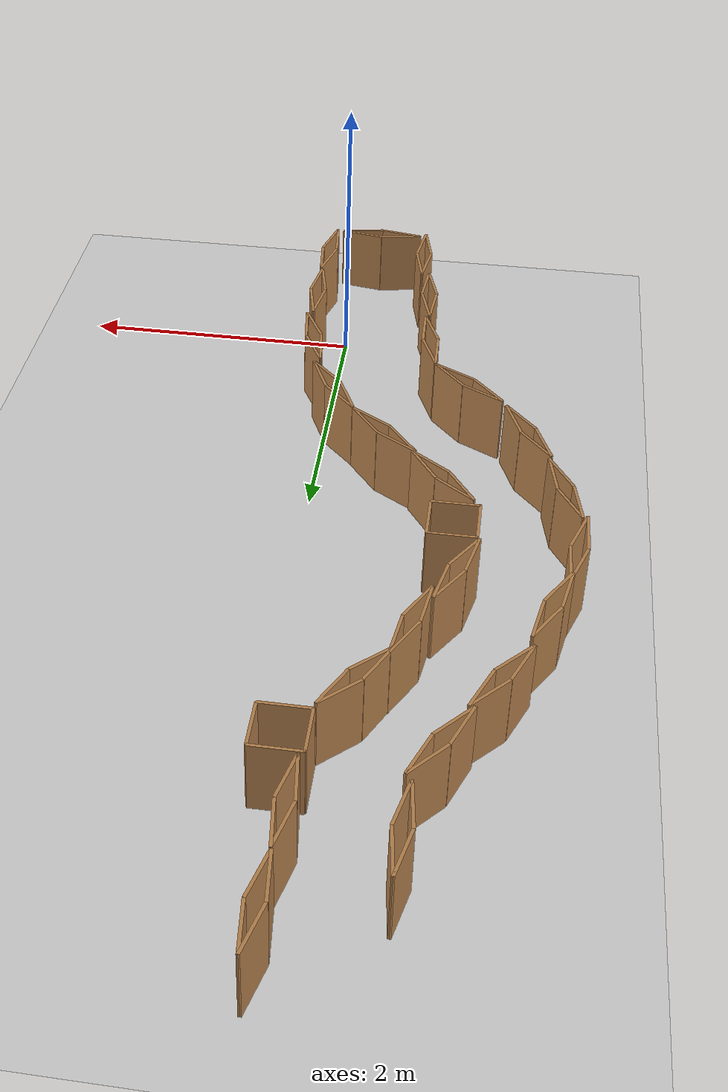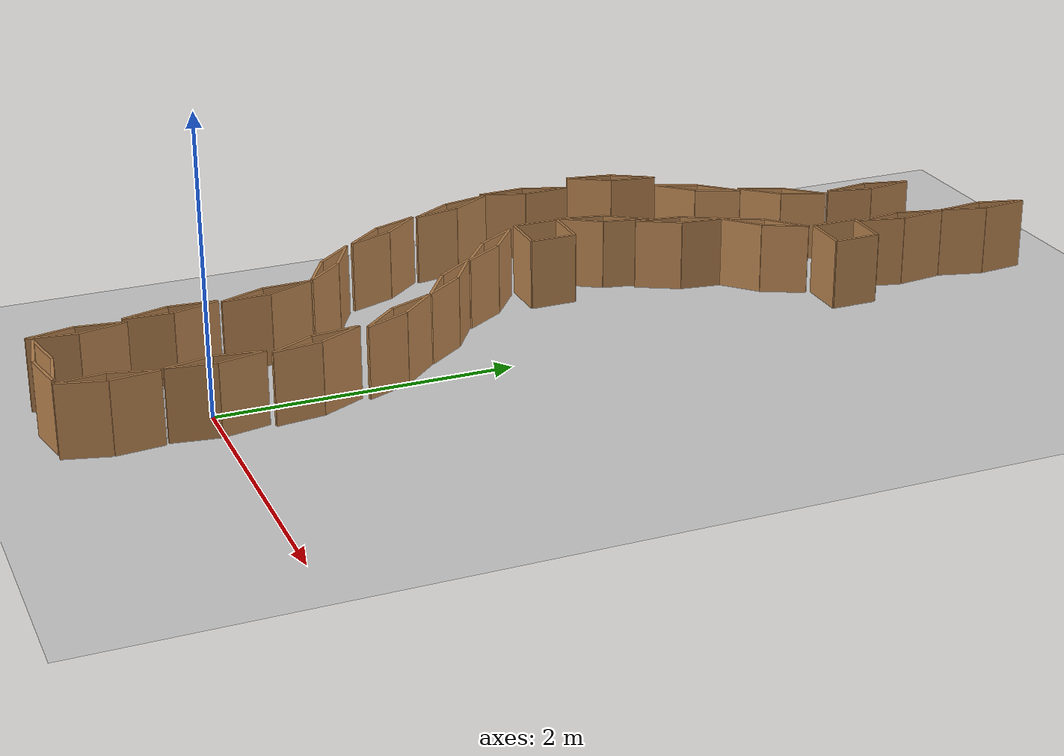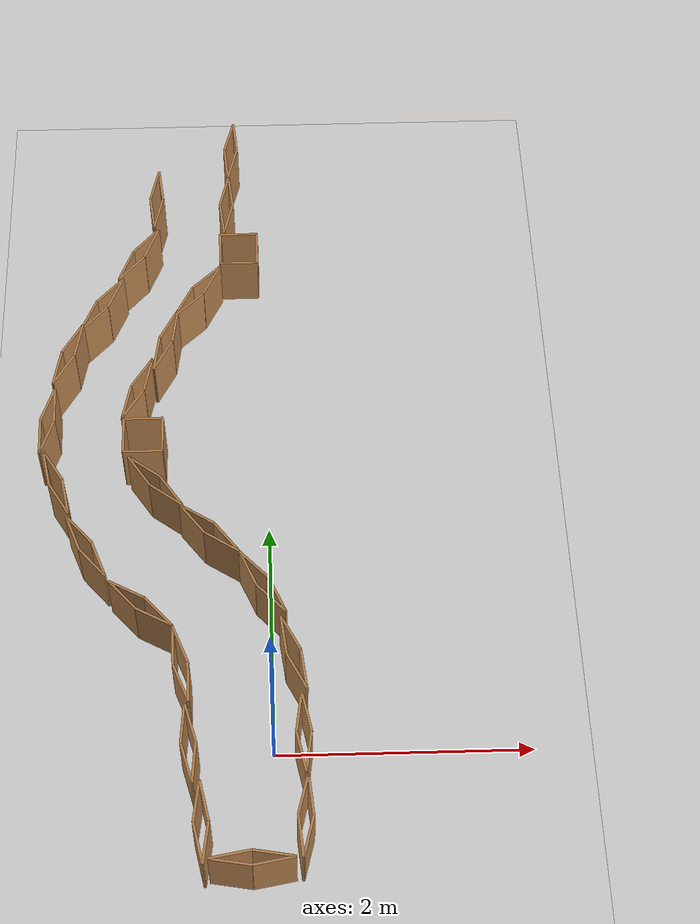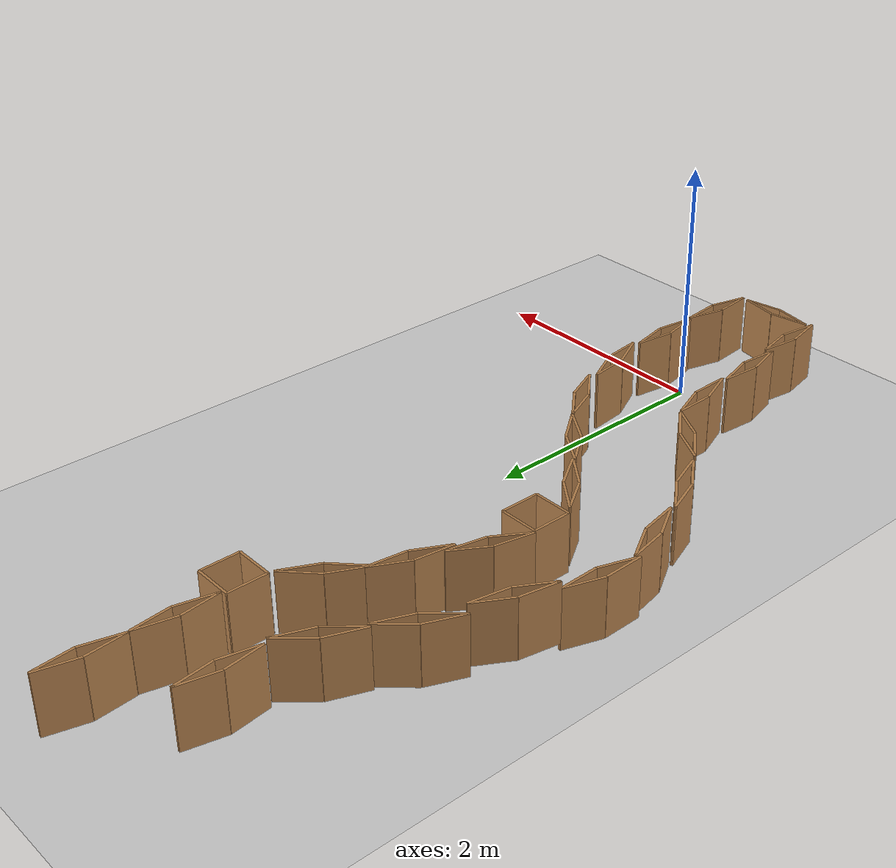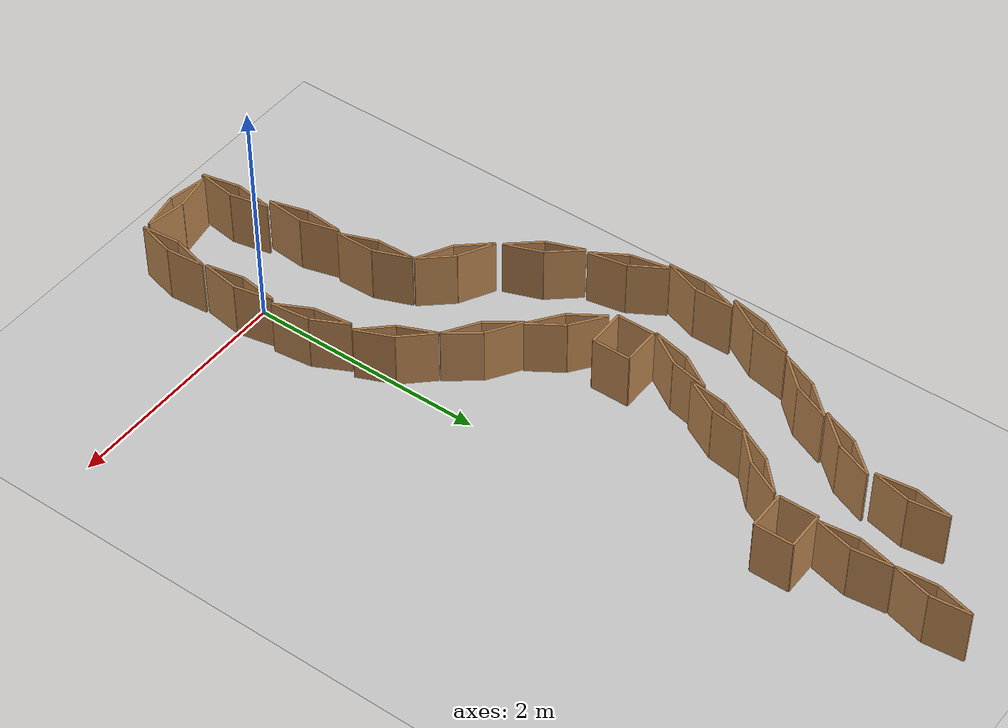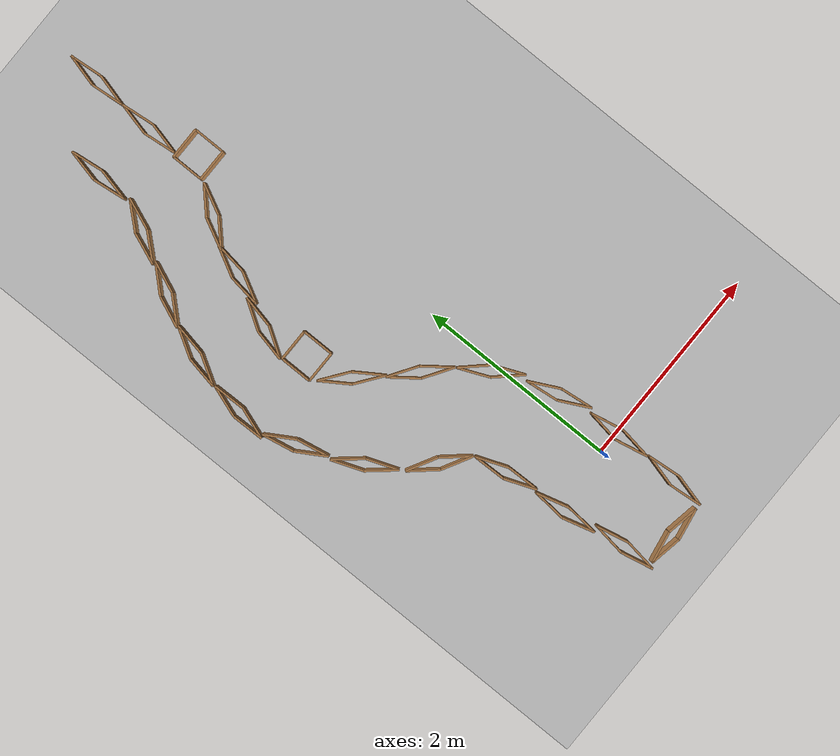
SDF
<sdf version="1.7">
 <world name="default">
  <model name="ground_plane">
   <static>1</static>
   <link name="link">
    <collision name="collision">
     <geometry><plane><normal>0 0 1</normal><size>100 100</size></plane></geometry>
     <surface>
      <contact><collide_bitmask>65535</collide_bitmask></contact>
      <friction><ode><mu>100</mu><mu2>50</mu2></ode></friction>
     </surface>
    </collision>
    <visual name="visual">
     <cast_shadows>0</cast_shadows>
     <geometry><plane><normal>0 0 1</normal><size>100 100</size></plane></geometry>
     <material>
      <script><uri>file://media/materials/scripts/gazebo.material</uri><name>Gazebo/Grey</name></script>
     </material>
    </visual>
   </link>
  </model>
  <light name="sun" type="directional">
   <pose>0 0 10 0 -0 0</pose>
   <diffuse>0.8 0.8 0.8 1</diffuse>
   <specular>0.2 0.2 0.2 1</specular>
   <attenuation>
    <range>1000</range>
    <constant>0.9</constant>
    <linear>0.01</linear>
    <quadratic>0.001</quadratic>
   </attenuation>
   <direction>-0.5 0.1 -0.9</direction>
   <spot><inner_angle>0</inner_angle><outer_angle>0</outer_angle><falloff>0</falloff></spot>
  </light>
  <model name="folded_box">
   <pose>0.227222 -0.01656 0 0 0 -1.5444</pose>
   <static>1</static>
   <link name="box1">
    <pose>0.16 -0.028218 0.25 0 -0 0.174533</pose>
    <collision name="collision"><geometry><box><size>0.325 0.05 0.5</size></box></geometry></collision>
    <visual name="visual">
     <geometry><box><size>0.325 0.02 0.5</size></box></geometry>
     <material>
      <script><uri>file://media/materials/scripts/gazebo.material</uri><name>Gazebo/WoodPallet</name></script>
     </material>
    </visual>
   </link>
   <link name="box2">
    <pose>0.16 0.028218 0.25 0 0 -0.174533</pose>
    <collision name="collision"><geometry><box><size>0.325 0.05 0.5</size></box></geometry></collision>
    <visual name="visual">
     <geometry><box><size>0.325 0.02 0.5</size></box></geometry>
     <material>
      <script><uri>file://media/materials/scripts/gazebo.material</uri><name>Gazebo/WoodPallet</name></script>
     </material>
    </visual>
   </link>
   <link name="box3">
    <pose>-0.16 0.028218 0.25 0 -0 0.174533</pose>
    <collision name="collision"><geometry><box><size>0.325 0.05 0.5</size></box></geometry></collision>
    <visual name="visual">
     <geometry><box><size>0.325 0.02 0.5</size></box></geometry>
     <material>
      <script><uri>file://media/materials/scripts/gazebo.material</uri><name>Gazebo/WoodPallet</name></script>
     </material>
    </visual>
   </link>
   <link name="box4">
    <pose>-0.16 -0.028218 0.25 0 0 -0.174533</pose>
    <collision name="collision"><geometry><box><size>0.325 0.05 0.5</size></box></geometry></collision>
    <visual name="visual">
     <geometry><box><size>0.325 0.02 0.5</size></box></geometry>
     <material>
      <script><uri>file://media/materials/scripts/gazebo.material</uri><name>Gazebo/WoodPallet</name></script>
     </material>
    </visual>
   </link>
  </model>
  <gravity>0 0 -9.8</gravity>
  <magnetic_field>6e-06 2.3e-05 -4.2e-05</magnetic_field>
  <atmosphere type="adiabatic"/>
  <physics name="default_physics" default="0" type="ode">
   <max_step_size>0.001</max_step_size>
   <real_time_factor>1</real_time_factor>
   <real_time_update_rate>1000</real_time_update_rate>
  </physics>
  <scene><ambient>0.4 0.4 0.4 1</ambient><background>0.7 0.7 0.7 1</background><shadows>1</shadows></scene>
  <audio><device>default</device></audio>
  <spherical_coordinates>
   <surface_model>EARTH_WGS84</surface_model>
   <latitude_deg>0</latitude_deg>
   <longitude_deg>0</longitude_deg>
   <elevation>0</elevation>
   <heading_deg>0</heading_deg>
  </spherical_coordinates>
  <model name="folded_box_clone">
   <static>1</static>
   <link name="box1">
    <pose>0.16 -0.028218 0.25 0 -0 0.174533</pose>
    <collision name="collision"><geometry><box><size>0.325 0.05 0.5</size></box></geometry></collision>
    <visual name="visual">
     <geometry><box><size>0.325 0.02 0.5</size></box></geometry>
     <material>
      <script><uri>file://media/materials/scripts/gazebo.material</uri><name>Gazebo/WoodPallet</name></script>
     </material>
    </visual>
   </link>
   <link name="box2">
    <pose>0.16 0.028218 0.25 0 0 -0.174533</pose>
    <collision name="collision"><geometry><box><size>0.325 0.05 0.5</size></box></geometry></collision>
    <visual name="visual">
     <geometry><box><size>0.325 0.02 0.5</size></box></geometry>
     <material>
      <script><uri>file://media/materials/scripts/gazebo.material</uri><name>Gazebo/WoodPallet</name></script>
     </material>
    </visual>
   </link>
   <link name="box3">
    <pose>-0.16 0.028218 0.25 0 -0 0.174533</pose>
    <collision name="collision"><geometry><box><size>0.325 0.05 0.5</size></box></geometry></collision>
    <visual name="visual">
     <geometry><box><size>0.325 0.02 0.5</size></box></geometry>
     <material>
      <script><uri>file://media/materials/scripts/gazebo.material</uri><name>Gazebo/WoodPallet</name></script>
     </material>
    </visual>
   </link>
   <link name="box4">
    <pose>-0.16 -0.028218 0.25 0 0 -0.174533</pose>
    <collision name="collision"><geometry><box><size>0.325 0.05 0.5</size></box></geometry></collision>
    <visual name="visual">
     <geometry><box><size>0.325 0.02 0.5</size></box></geometry>
     <material>
      <script><uri>file://media/materials/scripts/gazebo.material</uri><name>Gazebo/WoodPallet</name></script>
     </material>
    </visual>
   </link>
   <pose>-0.170439 -0.983466 0 0 -0 0</pose>
  </model>
  <model name="folded_box_clone_clone">
   <static>1</static>
   <link name="box1">
    <pose>0.16 -0.028218 0.25 0 -0 0.174533</pose>
    <collision name="collision"><geometry><box><size>0.325 0.05 0.5</size></box></geometry></collision>
    <visual name="visual">
     <geometry><box><size>0.325 0.02 0.5</size></box></geometry>
     <material>
      <script><uri>file://media/materials/scripts/gazebo.material</uri><name>Gazebo/WoodPallet</name></script>
     </material>
    </visual>
   </link>
   <link name="box2">
    <pose>0.16 0.028218 0.25 0 0 -0.174533</pose>
    <collision name="collision"><geometry><box><size>0.325 0.05 0.5</size></box></geometry></collision>
    <visual name="visual">
     <geometry><box><size>0.325 0.02 0.5</size></box></geometry>
     <material>
      <script><uri>file://media/materials/scripts/gazebo.material</uri><name>Gazebo/WoodPallet</name></script>
     </material>
    </visual>
   </link>
   <link name="box3">
    <pose>-0.16 0.028218 0.25 0 -0 0.174533</pose>
    <collision name="collision"><geometry><box><size>0.325 0.05 0.5</size></box></geometry></collision>
    <visual name="visual">
     <geometry><box><size>0.325 0.02 0.5</size></box></geometry>
     <material>
      <script><uri>file://media/materials/scripts/gazebo.material</uri><name>Gazebo/WoodPallet</name></script>
     </material>
    </visual>
   </link>
   <link name="box4">
    <pose>-0.16 -0.028218 0.25 0 0 -0.174533</pose>
    <collision name="collision"><geometry><box><size>0.325 0.05 0.5</size></box></geometry></collision>
    <visual name="visual">
     <geometry><box><size>0.325 0.02 0.5</size></box></geometry>
     <material>
      <script><uri>file://media/materials/scripts/gazebo.material</uri><name>Gazebo/WoodPallet</name></script>
     </material>
    </visual>
   </link>
   <pose>-0.538607 -0.702804 0 0 0 -1.53783</pose>
  </model>
  <model name="folded_box_clone_clone_clone">
   <static>1</static>
   <link name="box1">
    <pose>0.16 -0.028218 0.25 0 -0 0.174533</pose>
    <collision name="collision"><geometry><box><size>0.325 0.05 0.5</size></box></geometry></collision>
    <visual name="visual">
     <geometry><box><size>0.325 0.02 0.5</size></box></geometry>
     <material>
      <script><uri>file://media/materials/scripts/gazebo.material</uri><name>Gazebo/WoodPallet</name></script>
     </material>
    </visual>
   </link>
   <link name="box2">
    <pose>0.16 0.028218 0.25 0 0 -0.174533</pose>
    <collision name="collision"><geometry><box><size>0.325 0.05 0.5</size></box></geometry></collision>
    <visual name="visual">
     <geometry><box><size>0.325 0.02 0.5</size></box></geometry>
     <material>
      <script><uri>file://media/materials/scripts/gazebo.material</uri><name>Gazebo/WoodPallet</name></script>
     </material>
    </visual>
   </link>
   <link name="box3">
    <pose>-0.16 0.028218 0.25 0 -0 0.174533</pose>
    <collision name="collision"><geometry><box><size>0.325 0.05 0.5</size></box></geometry></collision>
    <visual name="visual">
     <geometry><box><size>0.325 0.02 0.5</size></box></geometry>
     <material>
      <script><uri>file://media/materials/scripts/gazebo.material</uri><name>Gazebo/WoodPallet</name></script>
     </material>
    </visual>
   </link>
   <link name="box4">
    <pose>-0.16 -0.028218 0.25 0 0 -0.174533</pose>
    <collision name="collision"><geometry><box><size>0.325 0.05 0.5</size></box></geometry></collision>
    <visual name="visual">
     <geometry><box><size>0.325 0.02 0.5</size></box></geometry>
     <material>
      <script><uri>file://media/materials/scripts/gazebo.material</uri><name>Gazebo/WoodPallet</name></script>
     </material>
    </visual>
   </link>
   <pose>0.16718 0.639805 0 0 0 -1.27848</pose>
  </model>
  <model name="folded_box_clone_clone_clone_0">
   <static>1</static>
   <link name="box1">
    <pose>0.16 -0.028218 0.25 0 -0 0.174533</pose>
    <collision name="collision"><geometry><box><size>0.325 0.05 0.5</size></box></geometry></collision>
    <visual name="visual">
     <geometry><box><size>0.325 0.02 0.5</size></box></geometry>
     <material>
      <script><uri>file://media/materials/scripts/gazebo.material</uri><name>Gazebo/WoodPallet</name></script>
     </material>
    </visual>
   </link>
   <link name="box2">
    <pose>0.16 0.028218 0.25 0 0 -0.174533</pose>
    <collision name="collision"><geometry><box><size>0.325 0.05 0.5</size></box></geometry></collision>
    <visual name="visual">
     <geometry><box><size>0.325 0.02 0.5</size></box></geometry>
     <material>
      <script><uri>file://media/materials/scripts/gazebo.material</uri><name>Gazebo/WoodPallet</name></script>
     </material>
    </visual>
   </link>
   <link name="box3">
    <pose>-0.16 0.028218 0.25 0 -0 0.174533</pose>
    <collision name="collision"><geometry><box><size>0.325 0.05 0.5</size></box></geometry></collision>
    <visual name="visual">
     <geometry><box><size>0.325 0.02 0.5</size></box></geometry>
     <material>
      <script><uri>file://media/materials/scripts/gazebo.material</uri><name>Gazebo/WoodPallet</name></script>
     </material>
    </visual>
   </link>
   <link name="box4">
    <pose>-0.16 -0.028218 0.25 0 0 -0.174533</pose>
    <collision name="collision"><geometry><box><size>0.325 0.05 0.5</size></box></geometry></collision>
    <visual name="visual">
     <geometry><box><size>0.325 0.02 0.5</size></box></geometry>
     <material>
      <script><uri>file://media/materials/scripts/gazebo.material</uri><name>Gazebo/WoodPallet</name></script>
     </material>
    </visual>
   </link>
   <pose>-0.633637 -0.083151 0 0 0 -1.47963</pose>
  </model>
  <model name="folded_box_clone_clone_clone_0_clone">
   <static>1</static>
   <link name="box1">
    <pose>0.16 -0.028218 0.25 0 -0 0.174533</pose>
    <collision name="collision"><geometry><box><size>0.325 0.05 0.5</size></box></geometry></collision>
    <visual name="visual">
     <geometry><box><size>0.325 0.02 0.5</size></box></geometry>
     <material>
      <script><uri>file://media/materials/scripts/gazebo.material</uri><name>Gazebo/WoodPallet</name></script>
     </material>
    </visual>
   </link>
   <link name="box2">
    <pose>0.16 0.028218 0.25 0 0 -0.174533</pose>
    <collision name="collision"><geometry><box><size>0.325 0.05 0.5</size></box></geometry></collision>
    <visual name="visual">
     <geometry><box><size>0.325 0.02 0.5</size></box></geometry>
     <material>
      <script><uri>file://media/materials/scripts/gazebo.material</uri><name>Gazebo/WoodPallet</name></script>
     </material>
    </visual>
   </link>
   <link name="box3">
    <pose>-0.16 0.028218 0.25 0 -0 0.174533</pose>
    <collision name="collision"><geometry><box><size>0.325 0.05 0.5</size></box></geometry></collision>
    <visual name="visual">
     <geometry><box><size>0.325 0.02 0.5</size></box></geometry>
     <material>
      <script><uri>file://media/materials/scripts/gazebo.material</uri><name>Gazebo/WoodPallet</name></script>
     </material>
    </visual>
   </link>
   <link name="box4">
    <pose>-0.16 -0.028218 0.25 0 0 -0.174533</pose>
    <collision name="collision"><geometry><box><size>0.325 0.05 0.5</size></box></geometry></collision>
    <visual name="visual">
     <geometry><box><size>0.325 0.02 0.5</size></box></geometry>
     <material>
      <script><uri>file://media/materials/scripts/gazebo.material</uri><name>Gazebo/WoodPallet</name></script>
     </material>
    </visual>
   </link>
   <pose>-0.696324 0.564663 0 0 0 -1.37448</pose>
  </model>
  <model name="folded_box_clone_clone_clone_0_clone_clone">
   <static>1</static>
   <link name="box1">
    <pose>0.16 -0.028218 0.25 0 -0 0.174533</pose>
    <collision name="collision"><geometry><box><size>0.325 0.05 0.5</size></box></geometry></collision>
    <visual name="visual">
     <geometry><box><size>0.325 0.02 0.5</size></box></geometry>
     <material>
      <script><uri>file://media/materials/scripts/gazebo.material</uri><name>Gazebo/WoodPallet</name></script>
     </material>
    </visual>
   </link>
   <link name="box2">
    <pose>0.16 0.028218 0.25 0 0 -0.174533</pose>
    <collision name="collision"><geometry><box><size>0.325 0.05 0.5</size></box></geometry></collision>
    <visual name="visual">
     <geometry><box><size>0.325 0.02 0.5</size></box></geometry>
     <material>
      <script><uri>file://media/materials/scripts/gazebo.material</uri><name>Gazebo/WoodPallet</name></script>
     </material>
    </visual>
   </link>
   <link name="box3">
    <pose>-0.16 0.028218 0.25 0 -0 0.174533</pose>
    <collision name="collision"><geometry><box><size>0.325 0.05 0.5</size></box></geometry></collision>
    <visual name="visual">
     <geometry><box><size>0.325 0.02 0.5</size></box></geometry>
     <material>
      <script><uri>file://media/materials/scripts/gazebo.material</uri><name>Gazebo/WoodPallet</name></script>
     </material>
    </visual>
   </link>
   <link name="box4">
    <pose>-0.16 -0.028218 0.25 0 0 -0.174533</pose>
    <collision name="collision"><geometry><box><size>0.325 0.05 0.5</size></box></geometry></collision>
    <visual name="visual">
     <geometry><box><size>0.325 0.02 0.5</size></box></geometry>
     <material>
      <script><uri>file://media/materials/scripts/gazebo.material</uri><name>Gazebo/WoodPallet</name></script>
     </material>
    </visual>
   </link>
   <pose>-1.01342 1.0919 0 0 0 -0.672295</pose>
  </model>
  <model name="folded_box_clone_clone_clone_clone">
   <static>1</static>
   <link name="box1">
    <pose>0.16 -0.028218 0.25 0 -0 0.174533</pose>
    <collision name="collision"><geometry><box><size>0.325 0.05 0.5</size></box></geometry></collision>
    <visual name="visual">
     <geometry><box><size>0.325 0.02 0.5</size></box></geometry>
     <material>
      <script><uri>file://media/materials/scripts/gazebo.material</uri><name>Gazebo/WoodPallet</name></script>
     </material>
    </visual>
   </link>
   <link name="box2">
    <pose>0.16 0.028218 0.25 0 0 -0.174533</pose>
    <collision name="collision"><geometry><box><size>0.325 0.05 0.5</size></box></geometry></collision>
    <visual name="visual">
     <geometry><box><size>0.325 0.02 0.5</size></box></geometry>
     <material>
      <script><uri>file://media/materials/scripts/gazebo.material</uri><name>Gazebo/WoodPallet</name></script>
     </material>
    </visual>
   </link>
   <link name="box3">
    <pose>-0.16 0.028218 0.25 0 -0 0.174533</pose>
    <collision name="collision"><geometry><box><size>0.325 0.05 0.5</size></box></geometry></collision>
    <visual name="visual">
     <geometry><box><size>0.325 0.02 0.5</size></box></geometry>
     <material>
      <script><uri>file://media/materials/scripts/gazebo.material</uri><name>Gazebo/WoodPallet</name></script>
     </material>
    </visual>
   </link>
   <link name="box4">
    <pose>-0.16 -0.028218 0.25 0 0 -0.174533</pose>
    <collision name="collision"><geometry><box><size>0.325 0.05 0.5</size></box></geometry></collision>
    <visual name="visual">
     <geometry><box><size>0.325 0.02 0.5</size></box></geometry>
     <material>
      <script><uri>file://media/materials/scripts/gazebo.material</uri><name>Gazebo/WoodPallet</name></script>
     </material>
    </visual>
   </link>
   <pose>-0.060691 1.25737 0 0 0 -0.989469</pose>
  </model>
  <model name="folded_box_clone_clone_clone_clone_clone">
   <static>1</static>
   <link name="box1">
    <pose>0.16 -0.028218 0.25 0 -0 0.174533</pose>
    <collision name="collision"><geometry><box><size>0.325 0.05 0.5</size></box></geometry></collision>
    <visual name="visual">
     <geometry><box><size>0.325 0.02 0.5</size></box></geometry>
     <material>
      <script><uri>file://media/materials/scripts/gazebo.material</uri><name>Gazebo/WoodPallet</name></script>
     </material>
    </visual>
   </link>
   <link name="box2">
    <pose>0.16 0.028218 0.25 0 0 -0.174533</pose>
    <collision name="collision"><geometry><box><size>0.325 0.05 0.5</size></box></geometry></collision>
    <visual name="visual">
     <geometry><box><size>0.325 0.02 0.5</size></box></geometry>
     <material>
      <script><uri>file://media/materials/scripts/gazebo.material</uri><name>Gazebo/WoodPallet</name></script>
     </material>
    </visual>
   </link>
   <link name="box3">
    <pose>-0.16 0.028218 0.25 0 -0 0.174533</pose>
    <collision name="collision"><geometry><box><size>0.325 0.05 0.5</size></box></geometry></collision>
    <visual name="visual">
     <geometry><box><size>0.325 0.02 0.5</size></box></geometry>
     <material>
      <script><uri>file://media/materials/scripts/gazebo.material</uri><name>Gazebo/WoodPallet</name></script>
     </material>
    </visual>
   </link>
   <link name="box4">
    <pose>-0.16 -0.028218 0.25 0 0 -0.174533</pose>
    <collision name="collision"><geometry><box><size>0.325 0.05 0.5</size></box></geometry></collision>
    <visual name="visual">
     <geometry><box><size>0.325 0.02 0.5</size></box></geometry>
     <material>
      <script><uri>file://media/materials/scripts/gazebo.material</uri><name>Gazebo/WoodPallet</name></script>
     </material>
    </visual>
   </link>
   <pose>-0.475657 1.75214 0 0 0 -0.747364</pose>
  </model>
  <model name="folded_box_clone_clone_clone_clone_clone_clone">
   <static>1</static>
   <link name="box1">
    <pose>0.16 -0.028218 0.25 0 -0 0.174533</pose>
    <collision name="collision"><geometry><box><size>0.325 0.05 0.5</size></box></geometry></collision>
    <visual name="visual">
     <geometry><box><size>0.325 0.02 0.5</size></box></geometry>
     <material>
      <script><uri>file://media/materials/scripts/gazebo.material</uri><name>Gazebo/WoodPallet</name></script>
     </material>
    </visual>
   </link>
   <link name="box2">
    <pose>0.16 0.028218 0.25 0 0 -0.174533</pose>
    <collision name="collision"><geometry><box><size>0.325 0.05 0.5</size></box></geometry></collision>
    <visual name="visual">
     <geometry><box><size>0.325 0.02 0.5</size></box></geometry>
     <material>
      <script><uri>file://media/materials/scripts/gazebo.material</uri><name>Gazebo/WoodPallet</name></script>
     </material>
    </visual>
   </link>
   <link name="box3">
    <pose>-0.16 0.028218 0.25 0 -0 0.174533</pose>
    <collision name="collision"><geometry><box><size>0.325 0.05 0.5</size></box></geometry></collision>
    <visual name="visual">
     <geometry><box><size>0.325 0.02 0.5</size></box></geometry>
     <material>
      <script><uri>file://media/materials/scripts/gazebo.material</uri><name>Gazebo/WoodPallet</name></script>
     </material>
    </visual>
   </link>
   <link name="box4">
    <pose>-0.16 -0.028218 0.25 0 0 -0.174533</pose>
    <collision name="collision"><geometry><box><size>0.325 0.05 0.5</size></box></geometry></collision>
    <visual name="visual">
     <geometry><box><size>0.325 0.02 0.5</size></box></geometry>
     <material>
      <script><uri>file://media/materials/scripts/gazebo.material</uri><name>Gazebo/WoodPallet</name></script>
     </material>
    </visual>
   </link>
   <pose>-0.913178 2.20492 0 0 0 -0.811482</pose>
  </model>
  <model name="folded_box_clone_clone_clone_clone_clone_clone_clone">
   <static>1</static>
   <link name="box1">
    <pose>0.16 -0.028218 0.25 0 -0 0.174533</pose>
    <collision name="collision"><geometry><box><size>0.325 0.05 0.5</size></box></geometry></collision>
    <visual name="visual">
     <geometry><box><size>0.325 0.02 0.5</size></box></geometry>
     <material>
      <script><uri>file://media/materials/scripts/gazebo.material</uri><name>Gazebo/WoodPallet</name></script>
     </material>
    </visual>
   </link>
   <link name="box2">
    <pose>0.16 0.028218 0.25 0 0 -0.174533</pose>
    <collision name="collision"><geometry><box><size>0.325 0.05 0.5</size></box></geometry></collision>
    <visual name="visual">
     <geometry><box><size>0.325 0.02 0.5</size></box></geometry>
     <material>
      <script><uri>file://media/materials/scripts/gazebo.material</uri><name>Gazebo/WoodPallet</name></script>
     </material>
    </visual>
   </link>
   <link name="box3">
    <pose>-0.16 0.028218 0.25 0 -0 0.174533</pose>
    <collision name="collision"><geometry><box><size>0.325 0.05 0.5</size></box></geometry></collision>
    <visual name="visual">
     <geometry><box><size>0.325 0.02 0.5</size></box></geometry>
     <material>
      <script><uri>file://media/materials/scripts/gazebo.material</uri><name>Gazebo/WoodPallet</name></script>
     </material>
    </visual>
   </link>
   <link name="box4">
    <pose>-0.16 -0.028218 0.25 0 0 -0.174533</pose>
    <collision name="collision"><geometry><box><size>0.325 0.05 0.5</size></box></geometry></collision>
    <visual name="visual">
     <geometry><box><size>0.325 0.02 0.5</size></box></geometry>
     <material>
      <script><uri>file://media/materials/scripts/gazebo.material</uri><name>Gazebo/WoodPallet</name></script>
     </material>
    </visual>
   </link>
   <pose>-1.45309 1.61362 0 0 0 -1.03474</pose>
  </model>
  <model name="folded_box_clone_clone_clone_0_clone_clone_clone">
   <static>1</static>
   <link name="box1">
    <pose>0.16 -0.028218 0.25 0 -0 0.174533</pose>
    <collision name="collision"><geometry><box><size>0.325 0.05 0.5</size></box></geometry></collision>
    <visual name="visual">
     <geometry><box><size>0.325 0.02 0.5</size></box></geometry>
     <material>
      <script><uri>file://media/materials/scripts/gazebo.material</uri><name>Gazebo/WoodPallet</name></script>
     </material>
    </visual>
   </link>
   <link name="box2">
    <pose>0.16 0.028218 0.25 0 0 -0.174533</pose>
    <collision name="collision"><geometry><box><size>0.325 0.05 0.5</size></box></geometry></collision>
    <visual name="visual">
     <geometry><box><size>0.325 0.02 0.5</size></box></geometry>
     <material>
      <script><uri>file://media/materials/scripts/gazebo.material</uri><name>Gazebo/WoodPallet</name></script>
     </material>
    </visual>
   </link>
   <link name="box3">
    <pose>-0.16 0.028218 0.25 0 -0 0.174533</pose>
    <collision name="collision"><geometry><box><size>0.325 0.05 0.5</size></box></geometry></collision>
    <visual name="visual">
     <geometry><box><size>0.325 0.02 0.5</size></box></geometry>
     <material>
      <script><uri>file://media/materials/scripts/gazebo.material</uri><name>Gazebo/WoodPallet</name></script>
     </material>
    </visual>
   </link>
   <link name="box4">
    <pose>-0.16 -0.028218 0.25 0 0 -0.174533</pose>
    <collision name="collision"><geometry><box><size>0.325 0.05 0.5</size></box></geometry></collision>
    <visual name="visual">
     <geometry><box><size>0.325 0.02 0.5</size></box></geometry>
     <material>
      <script><uri>file://media/materials/scripts/gazebo.material</uri><name>Gazebo/WoodPallet</name></script>
     </material>
    </visual>
   </link>
   <pose>-1.71461 2.21534 0 0 0 -1.20688</pose>
  </model>
  <model name="folded_box_2">
   <pose>-1.01823 2.65101 0 0 -0 0</pose>
   <static>1</static>
   <link name="box1">
    <pose>0 0.16 0.25 0 -0 0</pose>
    <collision name="collision"><geometry><box><size>0.325 0.05 0.5</size></box></geometry></collision>
    <visual name="visual">
     <geometry><box><size>0.325 0.02 0.5</size></box></geometry>
     <material>
      <script><uri>file://media/materials/scripts/gazebo.material</uri><name>Gazebo/WoodPallet</name></script>
     </material>
    </visual>
   </link>
   <link name="box2">
    <pose>0 -0.16 0.25 0 -0 0</pose>
    <collision name="collision"><geometry><box><size>0.325 0.05 0.5</size></box></geometry></collision>
    <visual name="visual">
     <geometry><box><size>0.325 0.02 0.5</size></box></geometry>
     <material>
      <script><uri>file://media/materials/scripts/gazebo.material</uri><name>Gazebo/WoodPallet</name></script>
     </material>
    </visual>
   </link>
   <link name="box3">
    <pose>0.16 0 0.25 0 -0 1.5708</pose>
    <collision name="collision"><geometry><box><size>0.325 0.05 0.5</size></box></geometry></collision>
    <visual name="visual">
     <geometry><box><size>0.325 0.02 0.5</size></box></geometry>
     <material>
      <script><uri>file://media/materials/scripts/gazebo.material</uri><name>Gazebo/WoodPallet</name></script>
     </material>
    </visual>
   </link>
   <link name="box4">
    <pose>-0.16 0 0.25 0 -0 1.5708</pose>
    <collision name="collision"><geometry><box><size>0.325 0.05 0.5</size></box></geometry></collision>
    <visual name="visual">
     <geometry><box><size>0.325 0.02 0.5</size></box></geometry>
     <material>
      <script><uri>file://media/materials/scripts/gazebo.material</uri><name>Gazebo/WoodPallet</name></script>
     </material>
    </visual>
   </link>
  </model>
  <model name="folded_box_clone_clone_clone_0_clone_clone_clone_clone">
   <static>1</static>
   <link name="box1">
    <pose>0.16 -0.028218 0.25 0 -0 0.174533</pose>
    <collision name="collision"><geometry><box><size>0.325 0.05 0.5</size></box></geometry></collision>
    <visual name="visual">
     <geometry><box><size>0.325 0.02 0.5</size></box></geometry>
     <material>
      <script><uri>file://media/materials/scripts/gazebo.material</uri><name>Gazebo/WoodPallet</name></script>
     </material>
    </visual>
   </link>
   <link name="box2">
    <pose>0.16 0.028218 0.25 0 0 -0.174533</pose>
    <collision name="collision"><geometry><box><size>0.325 0.05 0.5</size></box></geometry></collision>
    <visual name="visual">
     <geometry><box><size>0.325 0.02 0.5</size></box></geometry>
     <material>
      <script><uri>file://media/materials/scripts/gazebo.material</uri><name>Gazebo/WoodPallet</name></script>
     </material>
    </visual>
   </link>
   <link name="box3">
    <pose>-0.16 0.028218 0.25 0 -0 0.174533</pose>
    <collision name="collision"><geometry><box><size>0.325 0.05 0.5</size></box></geometry></collision>
    <visual name="visual">
     <geometry><box><size>0.325 0.02 0.5</size></box></geometry>
     <material>
      <script><uri>file://media/materials/scripts/gazebo.material</uri><name>Gazebo/WoodPallet</name></script>
     </material>
    </visual>
   </link>
   <link name="box4">
    <pose>-0.16 -0.028218 0.25 0 0 -0.174533</pose>
    <collision name="collision"><geometry><box><size>0.325 0.05 0.5</size></box></geometry></collision>
    <visual name="visual">
     <geometry><box><size>0.325 0.02 0.5</size></box></geometry>
     <material>
      <script><uri>file://media/materials/scripts/gazebo.material</uri><name>Gazebo/WoodPallet</name></script>
     </material>
    </visual>
   </link>
   <pose>-1.65499 3.43541 0.067739 0 0 -1.9339</pose>
  </model>
  <model name="folded_box_clone_clone_clone_0_clone_clone_clone_clone_clone">
   <static>1</static>
   <link name="box1">
    <pose>0.16 -0.028218 0.25 0 -0 0.174533</pose>
    <collision name="collision"><geometry><box><size>0.325 0.05 0.5</size></box></geometry></collision>
    <visual name="visual">
     <geometry><box><size>0.325 0.02 0.5</size></box></geometry>
     <material>
      <script><uri>file://media/materials/scripts/gazebo.material</uri><name>Gazebo/WoodPallet</name></script>
     </material>
    </visual>
   </link>
   <link name="box2">
    <pose>0.16 0.028218 0.25 0 0 -0.174533</pose>
    <collision name="collision"><geometry><box><size>0.325 0.05 0.5</size></box></geometry></collision>
    <visual name="visual">
     <geometry><box><size>0.325 0.02 0.5</size></box></geometry>
     <material>
      <script><uri>file://media/materials/scripts/gazebo.material</uri><name>Gazebo/WoodPallet</name></script>
     </material>
    </visual>
   </link>
   <link name="box3">
    <pose>-0.16 0.028218 0.25 0 -0 0.174533</pose>
    <collision name="collision"><geometry><box><size>0.325 0.05 0.5</size></box></geometry></collision>
    <visual name="visual">
     <geometry><box><size>0.325 0.02 0.5</size></box></geometry>
     <material>
      <script><uri>file://media/materials/scripts/gazebo.material</uri><name>Gazebo/WoodPallet</name></script>
     </material>
    </visual>
   </link>
   <link name="box4">
    <pose>-0.16 -0.028218 0.25 0 0 -0.174533</pose>
    <collision name="collision"><geometry><box><size>0.325 0.05 0.5</size></box></geometry></collision>
    <visual name="visual">
     <geometry><box><size>0.325 0.02 0.5</size></box></geometry>
     <material>
      <script><uri>file://media/materials/scripts/gazebo.material</uri><name>Gazebo/WoodPallet</name></script>
     </material>
    </visual>
   </link>
   <pose>-1.07172 3.11784 0 0 0 -1.96097</pose>
  </model>
  <model name="folded_box_clone_clone_clone_clone_clone_clone_clone_clone">
   <static>1</static>
   <link name="box1">
    <pose>0.16 -0.028218 0.25 0 -0 0.174533</pose>
    <collision name="collision"><geometry><box><size>0.325 0.05 0.5</size></box></geometry></collision>
    <visual name="visual">
     <geometry><box><size>0.325 0.02 0.5</size></box></geometry>
     <material>
      <script><uri>file://media/materials/scripts/gazebo.material</uri><name>Gazebo/WoodPallet</name></script>
     </material>
    </visual>
   </link>
   <link name="box2">
    <pose>0.16 0.028218 0.25 0 0 -0.174533</pose>
    <collision name="collision"><geometry><box><size>0.325 0.05 0.5</size></box></geometry></collision>
    <visual name="visual">
     <geometry><box><size>0.325 0.02 0.5</size></box></geometry>
     <material>
      <script><uri>file://media/materials/scripts/gazebo.material</uri><name>Gazebo/WoodPallet</name></script>
     </material>
    </visual>
   </link>
   <link name="box3">
    <pose>-0.16 0.028218 0.25 0 -0 0.174533</pose>
    <collision name="collision"><geometry><box><size>0.325 0.05 0.5</size></box></geometry></collision>
    <visual name="visual">
     <geometry><box><size>0.325 0.02 0.5</size></box></geometry>
     <material>
      <script><uri>file://media/materials/scripts/gazebo.material</uri><name>Gazebo/WoodPallet</name></script>
     </material>
    </visual>
   </link>
   <link name="box4">
    <pose>-0.16 -0.028218 0.25 0 0 -0.174533</pose>
    <collision name="collision"><geometry><box><size>0.325 0.05 0.5</size></box></geometry></collision>
    <visual name="visual">
     <geometry><box><size>0.325 0.02 0.5</size></box></geometry>
     <material>
      <script><uri>file://media/materials/scripts/gazebo.material</uri><name>Gazebo/WoodPallet</name></script>
     </material>
    </visual>
   </link>
   <pose>-1.80958 2.81119 0 0 -0 1.41084</pose>
  </model>
  <model name="folded_box_clone_clone_clone_0_clone_clone_clone_clone_clone_clone">
   <static>1</static>
   <link name="box1">
    <pose>0.16 -0.028218 0.25 0 -0 0.174533</pose>
    <collision name="collision"><geometry><box><size>0.325 0.05 0.5</size></box></geometry></collision>
    <visual name="visual">
     <geometry><box><size>0.325 0.02 0.5</size></box></geometry>
     <material>
      <script><uri>file://media/materials/scripts/gazebo.material</uri><name>Gazebo/WoodPallet</name></script>
     </material>
    </visual>
   </link>
   <link name="box2">
    <pose>0.16 0.028218 0.25 0 0 -0.174533</pose>
    <collision name="collision"><geometry><box><size>0.325 0.05 0.5</size></box></geometry></collision>
    <visual name="visual">
     <geometry><box><size>0.325 0.02 0.5</size></box></geometry>
     <material>
      <script><uri>file://media/materials/scripts/gazebo.material</uri><name>Gazebo/WoodPallet</name></script>
     </material>
    </visual>
   </link>
   <link name="box3">
    <pose>-0.16 0.028218 0.25 0 -0 0.174533</pose>
    <collision name="collision"><geometry><box><size>0.325 0.05 0.5</size></box></geometry></collision>
    <visual name="visual">
     <geometry><box><size>0.325 0.02 0.5</size></box></geometry>
     <material>
      <script><uri>file://media/materials/scripts/gazebo.material</uri><name>Gazebo/WoodPallet</name></script>
     </material>
    </visual>
   </link>
   <link name="box4">
    <pose>-0.16 -0.028218 0.25 0 0 -0.174533</pose>
    <collision name="collision"><geometry><box><size>0.325 0.05 0.5</size></box></geometry></collision>
    <visual name="visual">
     <geometry><box><size>0.325 0.02 0.5</size></box></geometry>
     <material>
      <script><uri>file://media/materials/scripts/gazebo.material</uri><name>Gazebo/WoodPallet</name></script>
     </material>
    </visual>
   </link>
   <pose>-0.572306 4.12455 0 0 0 -2.2115</pose>
  </model>
  <model name="folded_box_clone_clone_clone_0_clone_clone_clone_clone_clone_clone_clone">
   <static>1</static>
   <link name="box1">
    <pose>0.16 -0.028218 0.25 0 -0 0.174533</pose>
    <collision name="collision"><geometry><box><size>0.325 0.05 0.5</size></box></geometry></collision>
    <visual name="visual">
     <geometry><box><size>0.325 0.02 0.5</size></box></geometry>
     <material>
      <script><uri>file://media/materials/scripts/gazebo.material</uri><name>Gazebo/WoodPallet</name></script>
     </material>
    </visual>
   </link>
   <link name="box2">
    <pose>0.16 0.028218 0.25 0 0 -0.174533</pose>
    <collision name="collision"><geometry><box><size>0.325 0.05 0.5</size></box></geometry></collision>
    <visual name="visual">
     <geometry><box><size>0.325 0.02 0.5</size></box></geometry>
     <material>
      <script><uri>file://media/materials/scripts/gazebo.material</uri><name>Gazebo/WoodPallet</name></script>
     </material>
    </visual>
   </link>
   <link name="box3">
    <pose>-0.16 0.028218 0.25 0 -0 0.174533</pose>
    <collision name="collision"><geometry><box><size>0.325 0.05 0.5</size></box></geometry></collision>
    <visual name="visual">
     <geometry><box><size>0.325 0.02 0.5</size></box></geometry>
     <material>
      <script><uri>file://media/materials/scripts/gazebo.material</uri><name>Gazebo/WoodPallet</name></script>
     </material>
    </visual>
   </link>
   <link name="box4">
    <pose>-0.16 -0.028218 0.25 0 0 -0.174533</pose>
    <collision name="collision"><geometry><box><size>0.325 0.05 0.5</size></box></geometry></collision>
    <visual name="visual">
     <geometry><box><size>0.325 0.02 0.5</size></box></geometry>
     <material>
      <script><uri>file://media/materials/scripts/gazebo.material</uri><name>Gazebo/WoodPallet</name></script>
     </material>
    </visual>
   </link>
   <pose>-1.08746 4.54215 0 0 0 -2.12347</pose>
  </model>
  <model name="folded_box_clone_clone_clone_clone_clone_clone_clone_clone_clone">
   <static>1</static>
   <link name="box1">
    <pose>0.16 -0.028218 0.25 0 -0 0.174533</pose>
    <collision name="collision"><geometry><box><size>0.325 0.05 0.5</size></box></geometry></collision>
    <visual name="visual">
     <geometry><box><size>0.325 0.02 0.5</size></box></geometry>
     <material>
      <script><uri>file://media/materials/scripts/gazebo.material</uri><name>Gazebo/WoodPallet</name></script>
     </material>
    </visual>
   </link>
   <link name="box2">
    <pose>0.16 0.028218 0.25 0 0 -0.174533</pose>
    <collision name="collision"><geometry><box><size>0.325 0.05 0.5</size></box></geometry></collision>
    <visual name="visual">
     <geometry><box><size>0.325 0.02 0.5</size></box></geometry>
     <material>
      <script><uri>file://media/materials/scripts/gazebo.material</uri><name>Gazebo/WoodPallet</name></script>
     </material>
    </visual>
   </link>
   <link name="box3">
    <pose>-0.16 0.028218 0.25 0 -0 0.174533</pose>
    <collision name="collision"><geometry><box><size>0.325 0.05 0.5</size></box></geometry></collision>
    <visual name="visual">
     <geometry><box><size>0.325 0.02 0.5</size></box></geometry>
     <material>
      <script><uri>file://media/materials/scripts/gazebo.material</uri><name>Gazebo/WoodPallet</name></script>
     </material>
    </visual>
   </link>
   <link name="box4">
    <pose>-0.16 -0.028218 0.25 0 0 -0.174533</pose>
    <collision name="collision"><geometry><box><size>0.325 0.05 0.5</size></box></geometry></collision>
    <visual name="visual">
     <geometry><box><size>0.325 0.02 0.5</size></box></geometry>
     <material>
      <script><uri>file://media/materials/scripts/gazebo.material</uri><name>Gazebo/WoodPallet</name></script>
     </material>
    </visual>
   </link>
   <pose>-0.840229 3.61408 0 0 -0 1.2543</pose>
  </model>
  <model name="folded_box_2_clone">
   <pose>-0.215007 4.58298 0 0 -0 0</pose>
   <static>1</static>
   <link name="box1">
    <pose>0 0.16 0.25 0 -0 0</pose>
    <collision name="collision"><geometry><box><size>0.325 0.05 0.5</size></box></geometry></collision>
    <visual name="visual">
     <geometry><box><size>0.325 0.02 0.5</size></box></geometry>
     <material>
      <script><uri>file://media/materials/scripts/gazebo.material</uri><name>Gazebo/WoodPallet</name></script>
     </material>
    </visual>
   </link>
   <link name="box2">
    <pose>0 -0.16 0.25 0 -0 0</pose>
    <collision name="collision"><geometry><box><size>0.325 0.05 0.5</size></box></geometry></collision>
    <visual name="visual">
     <geometry><box><size>0.325 0.02 0.5</size></box></geometry>
     <material>
      <script><uri>file://media/materials/scripts/gazebo.material</uri><name>Gazebo/WoodPallet</name></script>
     </material>
    </visual>
   </link>
   <link name="box3">
    <pose>0.16 0 0.25 0 -0 1.5708</pose>
    <collision name="collision"><geometry><box><size>0.325 0.05 0.5</size></box></geometry></collision>
    <visual name="visual">
     <geometry><box><size>0.325 0.02 0.5</size></box></geometry>
     <material>
      <script><uri>file://media/materials/scripts/gazebo.material</uri><name>Gazebo/WoodPallet</name></script>
     </material>
    </visual>
   </link>
   <link name="box4">
    <pose>-0.16 0 0.25 0 -0 1.5708</pose>
    <collision name="collision"><geometry><box><size>0.325 0.05 0.5</size></box></geometry></collision>
    <visual name="visual">
     <geometry><box><size>0.325 0.02 0.5</size></box></geometry>
     <material>
      <script><uri>file://media/materials/scripts/gazebo.material</uri><name>Gazebo/WoodPallet</name></script>
     </material>
    </visual>
   </link>
  </model>
  <model name="folded_box_clone_clone_clone_clone_clone_clone_clone_clone_clone_clone">
   <static>1</static>
   <link name="box1">
    <pose>0.16 -0.028218 0.25 0 -0 0.174533</pose>
    <collision name="collision"><geometry><box><size>0.325 0.05 0.5</size></box></geometry></collision>
    <visual name="visual">
     <geometry><box><size>0.325 0.02 0.5</size></box></geometry>
     <material>
      <script><uri>file://media/materials/scripts/gazebo.material</uri><name>Gazebo/WoodPallet</name></script>
     </material>
    </visual>
   </link>
   <link name="box2">
    <pose>0.16 0.028218 0.25 0 0 -0.174533</pose>
    <collision name="collision"><geometry><box><size>0.325 0.05 0.5</size></box></geometry></collision>
    <visual name="visual">
     <geometry><box><size>0.325 0.02 0.5</size></box></geometry>
     <material>
      <script><uri>file://media/materials/scripts/gazebo.material</uri><name>Gazebo/WoodPallet</name></script>
     </material>
    </visual>
   </link>
   <link name="box3">
    <pose>-0.16 0.028218 0.25 0 -0 0.174533</pose>
    <collision name="collision"><geometry><box><size>0.325 0.05 0.5</size></box></geometry></collision>
    <visual name="visual">
     <geometry><box><size>0.325 0.02 0.5</size></box></geometry>
     <material>
      <script><uri>file://media/materials/scripts/gazebo.material</uri><name>Gazebo/WoodPallet</name></script>
     </material>
    </visual>
   </link>
   <link name="box4">
    <pose>-0.16 -0.028218 0.25 0 0 -0.174533</pose>
    <collision name="collision"><geometry><box><size>0.325 0.05 0.5</size></box></geometry></collision>
    <visual name="visual">
     <geometry><box><size>0.325 0.02 0.5</size></box></geometry>
     <material>
      <script><uri>file://media/materials/scripts/gazebo.material</uri><name>Gazebo/WoodPallet</name></script>
     </material>
    </visual>
   </link>
   <pose>-1.39191 4.00095 0 0 -0 0.997677</pose>
  </model>
  <model name="folded_box_clone_clone_clone_clone_clone_clone_clone_clone_clone_clone_clone">
   <static>1</static>
   <link name="box1">
    <pose>0.16 -0.028218 0.25 0 -0 0.174533</pose>
    <collision name="collision"><geometry><box><size>0.325 0.05 0.5</size></box></geometry></collision>
    <visual name="visual">
     <geometry><box><size>0.325 0.02 0.5</size></box></geometry>
     <material>
      <script><uri>file://media/materials/scripts/gazebo.material</uri><name>Gazebo/WoodPallet</name></script>
     </material>
    </visual>
   </link>
   <link name="box2">
    <pose>0.16 0.028218 0.25 0 0 -0.174533</pose>
    <collision name="collision"><geometry><box><size>0.325 0.05 0.5</size></box></geometry></collision>
    <visual name="visual">
     <geometry><box><size>0.325 0.02 0.5</size></box></geometry>
     <material>
      <script><uri>file://media/materials/scripts/gazebo.material</uri><name>Gazebo/WoodPallet</name></script>
     </material>
    </visual>
   </link>
   <link name="box3">
    <pose>-0.16 0.028218 0.25 0 -0 0.174533</pose>
    <collision name="collision"><geometry><box><size>0.325 0.05 0.5</size></box></geometry></collision>
    <visual name="visual">
     <geometry><box><size>0.325 0.02 0.5</size></box></geometry>
     <material>
      <script><uri>file://media/materials/scripts/gazebo.material</uri><name>Gazebo/WoodPallet</name></script>
     </material>
    </visual>
   </link>
   <link name="box4">
    <pose>-0.16 -0.028218 0.25 0 0 -0.174533</pose>
    <collision name="collision"><geometry><box><size>0.325 0.05 0.5</size></box></geometry></collision>
    <visual name="visual">
     <geometry><box><size>0.325 0.02 0.5</size></box></geometry>
     <material>
      <script><uri>file://media/materials/scripts/gazebo.material</uri><name>Gazebo/WoodPallet</name></script>
     </material>
    </visual>
   </link>
   <pose>-0.319842 5.0827 0 0 -0 1.50533</pose>
  </model>
  <model name="folded_box_clone_clone_clone_clone_clone_clone_clone_clone_clone_clone_clone_clone">
   <static>1</static>
   <link name="box1">
    <pose>0.16 -0.028218 0.25 0 -0 0.174533</pose>
    <collision name="collision"><geometry><box><size>0.325 0.05 0.5</size></box></geometry></collision>
    <visual name="visual">
     <geometry><box><size>0.325 0.02 0.5</size></box></geometry>
     <material>
      <script><uri>file://media/materials/scripts/gazebo.material</uri><name>Gazebo/WoodPallet</name></script>
     </material>
    </visual>
   </link>
   <link name="box2">
    <pose>0.16 0.028218 0.25 0 0 -0.174533</pose>
    <collision name="collision"><geometry><box><size>0.325 0.05 0.5</size></box></geometry></collision>
    <visual name="visual">
     <geometry><box><size>0.325 0.02 0.5</size></box></geometry>
     <material>
      <script><uri>file://media/materials/scripts/gazebo.material</uri><name>Gazebo/WoodPallet</name></script>
     </material>
    </visual>
   </link>
   <link name="box3">
    <pose>-0.16 0.028218 0.25 0 -0 0.174533</pose>
    <collision name="collision"><geometry><box><size>0.325 0.05 0.5</size></box></geometry></collision>
    <visual name="visual">
     <geometry><box><size>0.325 0.02 0.5</size></box></geometry>
     <material>
      <script><uri>file://media/materials/scripts/gazebo.material</uri><name>Gazebo/WoodPallet</name></script>
     </material>
    </visual>
   </link>
   <link name="box4">
    <pose>-0.16 -0.028218 0.25 0 0 -0.174533</pose>
    <collision name="collision"><geometry><box><size>0.325 0.05 0.5</size></box></geometry></collision>
    <visual name="visual">
     <geometry><box><size>0.325 0.02 0.5</size></box></geometry>
     <material>
      <script><uri>file://media/materials/scripts/gazebo.material</uri><name>Gazebo/WoodPallet</name></script>
     </material>
    </visual>
   </link>
   <pose>-0.940271 5.17107 0 0 -0 1.5167</pose>
  </model>
  <model name="folded_box_clone_clone_clone_clone_clone_clone_clone_clone_clone_clone_clone_clone_clone">
   <static>1</static>
   <link name="box1">
    <pose>0.16 -0.028218 0.25 0 -0 0.174533</pose>
    <collision name="collision"><geometry><box><size>0.325 0.05 0.5</size></box></geometry></collision>
    <visual name="visual">
     <geometry><box><size>0.325 0.02 0.5</size></box></geometry>
     <material>
      <script><uri>file://media/materials/scripts/gazebo.material</uri><name>Gazebo/WoodPallet</name></script>
     </material>
    </visual>
   </link>
   <link name="box2">
    <pose>0.16 0.028218 0.25 0 0 -0.174533</pose>
    <collision name="collision"><geometry><box><size>0.325 0.05 0.5</size></box></geometry></collision>
    <visual name="visual">
     <geometry><box><size>0.325 0.02 0.5</size></box></geometry>
     <material>
      <script><uri>file://media/materials/scripts/gazebo.material</uri><name>Gazebo/WoodPallet</name></script>
     </material>
    </visual>
   </link>
   <link name="box3">
    <pose>-0.16 0.028218 0.25 0 -0 0.174533</pose>
    <collision name="collision"><geometry><box><size>0.325 0.05 0.5</size></box></geometry></collision>
    <visual name="visual">
     <geometry><box><size>0.325 0.02 0.5</size></box></geometry>
     <material>
      <script><uri>file://media/materials/scripts/gazebo.material</uri><name>Gazebo/WoodPallet</name></script>
     </material>
    </visual>
   </link>
   <link name="box4">
    <pose>-0.16 -0.028218 0.25 0 0 -0.174533</pose>
    <collision name="collision"><geometry><box><size>0.325 0.05 0.5</size></box></geometry></collision>
    <visual name="visual">
     <geometry><box><size>0.325 0.02 0.5</size></box></geometry>
     <material>
      <script><uri>file://media/materials/scripts/gazebo.material</uri><name>Gazebo/WoodPallet</name></script>
     </material>
    </visual>
   </link>
   <pose>-0.276734 5.72978 0 0 -0 1.48647</pose>
  </model>
  <model name="folded_box_clone_clone_0">
   <static>1</static>
   <link name="box1">
    <pose>0.16 -0.028218 0.25 0 -0 0.174533</pose>
    <collision name="collision"><geometry><box><size>0.325 0.05 0.5</size></box></geometry></collision>
    <visual name="visual">
     <geometry><box><size>0.325 0.02 0.5</size></box></geometry>
     <material>
      <script><uri>file://media/materials/scripts/gazebo.material</uri><name>Gazebo/WoodPallet</name></script>
     </material>
    </visual>
   </link>
   <link name="box2">
    <pose>0.16 0.028218 0.25 0 0 -0.174533</pose>
    <collision name="collision"><geometry><box><size>0.325 0.05 0.5</size></box></geometry></collision>
    <visual name="visual">
     <geometry><box><size>0.325 0.02 0.5</size></box></geometry>
     <material>
      <script><uri>file://media/materials/scripts/gazebo.material</uri><name>Gazebo/WoodPallet</name></script>
     </material>
    </visual>
   </link>
   <link name="box3">
    <pose>-0.16 0.028218 0.25 0 -0 0.174533</pose>
    <collision name="collision"><geometry><box><size>0.325 0.05 0.5</size></box></geometry></collision>
    <visual name="visual">
     <geometry><box><size>0.325 0.02 0.5</size></box></geometry>
     <material>
      <script><uri>file://media/materials/scripts/gazebo.material</uri><name>Gazebo/WoodPallet</name></script>
     </material>
    </visual>
   </link>
   <link name="box4">
    <pose>-0.16 -0.028218 0.25 0 0 -0.174533</pose>
    <collision name="collision"><geometry><box><size>0.325 0.05 0.5</size></box></geometry></collision>
    <visual name="visual">
     <geometry><box><size>0.325 0.02 0.5</size></box></geometry>
     <material>
      <script><uri>file://media/materials/scripts/gazebo.material</uri><name>Gazebo/WoodPallet</name></script>
     </material>
    </visual>
   </link>
   <pose>0.223132 -0.674028 0 0 0 -1.6536</pose>
  </model>
 </world>
</sdf>
